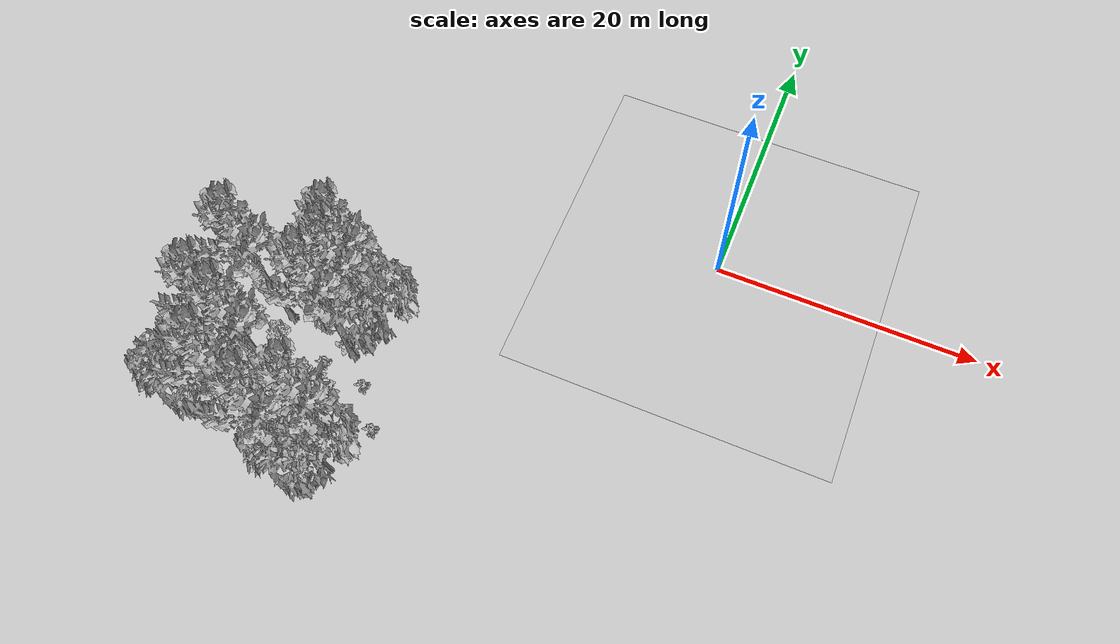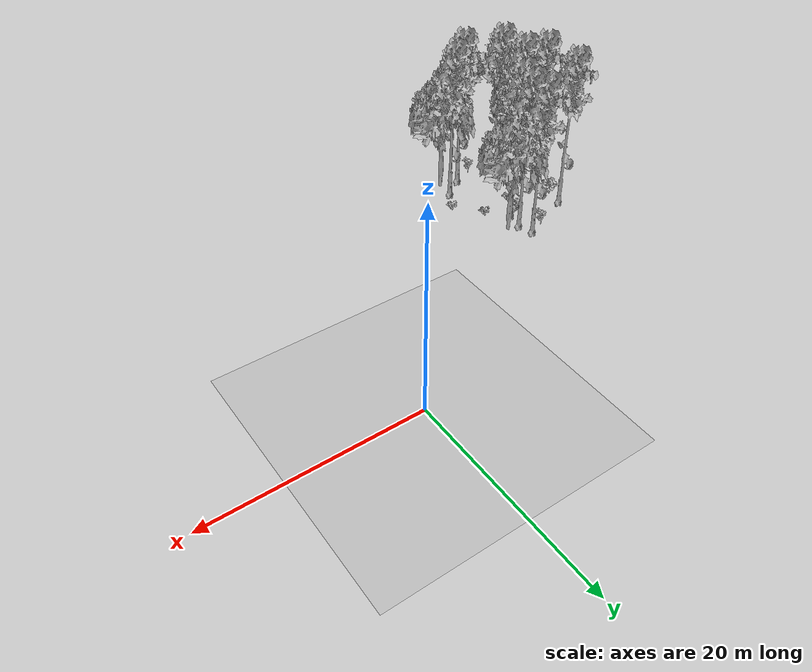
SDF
<sdf version="1.7">
 <world name="default">
  <model name="ground_plane">
   <static>1</static>
   <link name="link">
    <collision name="collision">
     <pose>-50 0 0 0 -0 0</pose>
     <geometry><plane><normal>0 0 1</normal><size>80 80</size></plane></geometry>
     <surface><contact><ode><min_depth>0.01</min_depth><max_vel>0</max_vel></ode></contact></surface>
    </collision>
    <visual name="grass">
     <cast_shadows>0</cast_shadows>
     <geometry>
      <mesh>
       <scale>0.46714285714285714 0.46714285714285714 0.1</scale>
       <uri>file://grass_plane/meshes/grass_plane.dae</uri>
      </mesh>
     </geometry>
    </visual>
   </link>
  </model>
  <model name="Tree 37">
   <static>1</static>
   <pose>-22.56918885558309 -13.229997733210759 0 1.57079 -0 0</pose>
   <link name="link">
    <collision name="collision">
     <geometry><mesh><scale>3.5 5 3.5</scale><uri>model://tree_9/meshes/tree_9.obj</uri></mesh></geometry>
    </collision>
    <visual name="visual">
     <geometry><mesh><scale>3.5 5 3.5</scale><uri>model://tree_9/meshes/tree_9.obj</uri></mesh></geometry>
    </visual>
   </link>
  </model>
  <model name="Tree 66">
   <static>1</static>
   <pose>-28.22959103672816 -15.623549065819489 0 1.57079 -0 0</pose>
   <link name="link">
    <collision name="collision">
     <geometry><mesh><scale>3.5 5 3.5</scale><uri>model://tree_9/meshes/tree_9.obj</uri></mesh></geometry>
    </collision>
    <visual name="visual">
     <geometry><mesh><scale>3.5 5 3.5</scale><uri>model://tree_9/meshes/tree_9.obj</uri></mesh></geometry>
    </visual>
   </link>
  </model>
  <model name="Tree 69">
   <static>1</static>
   <pose>-22.58187179136092 -16.61043060844613 0 1.57079 -0 0</pose>
   <link name="link">
    <collision name="collision">
     <geometry><mesh><scale>3.5 5 3.5</scale><uri>model://tree_9/meshes/tree_9.obj</uri></mesh></geometry>
    </collision>
    <visual name="visual">
     <geometry><mesh><scale>3.5 5 3.5</scale><uri>model://tree_9/meshes/tree_9.obj</uri></mesh></geometry>
    </visual>
   </link>
  </model>
  <model name="Tree 140">
   <static>1</static>
   <pose>-20.819001208258232 -14.80523766509755 0 1.57079 -0 0</pose>
   <link name="link">
    <collision name="collision">
     <geometry><mesh><scale>3.5 5 3.5</scale><uri>model://tree_2/meshes/tree_2.obj</uri></mesh></geometry>
    </collision>
    <visual name="visual">
     <geometry><mesh><scale>3.5 5 3.5</scale><uri>model://tree_2/meshes/tree_2.obj</uri></mesh></geometry>
    </visual>
   </link>
  </model>
  <model name="Tree 194">
   <static>1</static>
   <pose>-29.011436245711018 -23.035918738318102 0 1.57079 -0 0</pose>
   <link name="link">
    <collision name="collision">
     <geometry><mesh><scale>3.5 5 3.5</scale><uri>model://tree_2/meshes/tree_2.obj</uri></mesh></geometry>
    </collision>
    <visual name="visual">
     <geometry><mesh><scale>3.5 5 3.5</scale><uri>model://tree_2/meshes/tree_2.obj</uri></mesh></geometry>
    </visual>
   </link>
  </model>
  <model name="Tree 217">
   <static>1</static>
   <pose>-19.852764068627735 -24.886477989356717 0 1.57079 -0 0</pose>
   <link name="link">
    <collision name="collision">
     <geometry><mesh><scale>3.5 5 3.5</scale><uri>model://tree_2/meshes/tree_2.obj</uri></mesh></geometry>
    </collision>
    <visual name="visual">
     <geometry><mesh><scale>3.5 5 3.5</scale><uri>model://tree_2/meshes/tree_2.obj</uri></mesh></geometry>
    </visual>
   </link>
  </model>
  <model name="Tree 311">
   <static>1</static>
   <pose>-19.778366991958922 -23.222877299637226 0 1.57079 -0 0</pose>
   <link name="link">
    <collision name="collision">
     <geometry><mesh><scale>3.5 5 3.5</scale><uri>model://tree_9/meshes/tree_9.obj</uri></mesh></geometry>
    </collision>
    <visual name="visual">
     <geometry><mesh><scale>3.5 5 3.5</scale><uri>model://tree_9/meshes/tree_9.obj</uri></mesh></geometry>
    </visual>
   </link>
  </model>
  <model name="Tree 324">
   <static>1</static>
   <pose>-22.121172734994545 -14.7774786051314 0 1.57079 -0 0</pose>
   <link name="link">
    <collision name="collision">
     <geometry><mesh><scale>3.5 5 3.5</scale><uri>model://tree_9/meshes/tree_9.obj</uri></mesh></geometry>
    </collision>
    <visual name="visual">
     <geometry><mesh><scale>3.5 5 3.5</scale><uri>model://tree_9/meshes/tree_9.obj</uri></mesh></geometry>
    </visual>
   </link>
  </model>
  <model name="Tree 330">
   <static>1</static>
   <pose>-26.10420029205101 -20.564985670385916 0 1.57079 -0 0</pose>
   <link name="link">
    <collision name="collision">
     <geometry><mesh><scale>3.5 5 3.5</scale><uri>model://tree_9/meshes/tree_9.obj</uri></mesh></geometry>
    </collision>
    <visual name="visual">
     <geometry><mesh><scale>3.5 5 3.5</scale><uri>model://tree_9/meshes/tree_9.obj</uri></mesh></geometry>
    </visual>
   </link>
  </model>
  <model name="Tree 405">
   <static>1</static>
   <pose>-25.69879026475001 -23.42334859299448 0 1.57079 -0 0</pose>
   <link name="link">
    <collision name="collision">
     <geometry><mesh><scale>3.5 5 3.5</scale><uri>model://tree_9/meshes/tree_9.obj</uri></mesh></geometry>
    </collision>
    <visual name="visual">
     <geometry><mesh><scale>3.5 5 3.5</scale><uri>model://tree_9/meshes/tree_9.obj</uri></mesh></geometry>
    </visual>
   </link>
  </model>
  <model name="Tree 511">
   <static>1</static>
   <pose>-21.922821562994475 -24.76817637340887 0 1.57079 -0 0</pose>
   <link name="link">
    <collision name="collision">
     <geometry><mesh><scale>3.5 5 3.5</scale><uri>model://tree_9/meshes/tree_9.obj</uri></mesh></geometry>
    </collision>
    <visual name="visual">
     <geometry><mesh><scale>3.5 5 3.5</scale><uri>model://tree_9/meshes/tree_9.obj</uri></mesh></geometry>
    </visual>
   </link>
  </model>
  <model name="Tree 564">
   <static>1</static>
   <pose>-28.163495206666923 -19.779569167362972 0 1.57079 -0 0</pose>
   <link name="link">
    <collision name="collision">
     <geometry><mesh><scale>3.5 5 3.5</scale><uri>model://tree_9/meshes/tree_9.obj</uri></mesh></geometry>
    </collision>
    <visual name="visual">
     <geometry><mesh><scale>3.5 5 3.5</scale><uri>model://tree_9/meshes/tree_9.obj</uri></mesh></geometry>
    </visual>
   </link>
  </model>
  <model name="Bush 6">
   <static>1</static>
   <pose>-24.306887784665324 -19.244878064709738 0 1.57079 -0 0</pose>
   <link name="link">
    <collision name="collision">
     <geometry><mesh><scale>2 2 2</scale><uri>model://bush_2/meshes/bush_2.obj</uri></mesh></geometry>
     <surface><contact><collide_without_contact>false</collide_without_contact></contact></surface>
    </collision>
    <visual name="visual">
     <geometry><mesh><scale>2 2 2</scale><uri>model://bush_2/meshes/bush_2.obj</uri></mesh></geometry>
    </visual>
   </link>
  </model>
  <model name="Bush 30">
   <static>1</static>
   <pose>-28.206777856427653 -17.44750158870982 0 1.57079 -0 0</pose>
   <link name="link">
    <collision name="collision">
     <geometry><mesh><scale>2 2 2</scale><uri>model://bush_1/meshes/bush_1.obj</uri></mesh></geometry>
     <surface><contact><collide_without_contact>false</collide_without_contact></contact></surface>
    </collision>
    <visual name="visual">
     <geometry><mesh><scale>2 2 2</scale><uri>model://bush_1/meshes/bush_1.obj</uri></mesh></geometry>
    </visual>
   </link>
  </model>
  <model name="Bush 286">
   <static>1</static>
   <pose>-24.202159571342346 -18.005392746231657 0 1.57079 -0 0</pose>
   <link name="link">
    <collision name="collision">
     <geometry><mesh><scale>2 2 2</scale><uri>model://bush_2/meshes/bush_2.obj</uri></mesh></geometry>
     <surface><contact><collide_without_contact>false</collide_without_contact></contact></surface>
    </collision>
    <visual name="visual">
     <geometry><mesh><scale>2 2 2</scale><uri>model://bush_2/meshes/bush_2.obj</uri></mesh></geometry>
    </visual>
   </link>
  </model>
  <model name="Bush 292">
   <static>1</static>
   <pose>-26.28372037166481 -24.97533815437403 0 1.57079 -0 0</pose>
   <link name="link">
    <collision name="collision">
     <geometry><mesh><scale>2 2 2</scale><uri>model://bush_2/meshes/bush_2.obj</uri></mesh></geometry>
     <surface><contact><collide_without_contact>false</collide_without_contact></contact></surface>
    </collision>
    <visual name="visual">
     <geometry><mesh><scale>2 2 2</scale><uri>model://bush_2/meshes/bush_2.obj</uri></mesh></geometry>
    </visual>
   </link>
  </model>
  <model name="Bush 315">
   <static>1</static>
   <pose>-27.85464195422384 -18.213551732784616 0 1.57079 -0 0</pose>
   <link name="link">
    <collision name="collision">
     <geometry><mesh><scale>2 2 2</scale><uri>model://bush_2/meshes/bush_2.obj</uri></mesh></geometry>
     <surface><contact><collide_without_contact>false</collide_without_contact></contact></surface>
    </collision>
    <visual name="visual">
     <geometry><mesh><scale>2 2 2</scale><uri>model://bush_2/meshes/bush_2.obj</uri></mesh></geometry>
    </visual>
   </link>
  </model>
  <model name="Bush 407">
   <static>1</static>
   <pose>-22.929565929189053 -16.524754234295767 0 1.57079 -0 0</pose>
   <link name="link">
    <collision name="collision">
     <geometry><mesh><scale>2 2 2</scale><uri>model://bush_0/meshes/bush_0.obj</uri></mesh></geometry>
     <surface><contact><collide_without_contact>false</collide_without_contact></contact></surface>
    </collision>
    <visual name="visual">
     <geometry><mesh><scale>2 2 2</scale><uri>model://bush_0/meshes/bush_0.obj</uri></mesh></geometry>
    </visual>
   </link>
  </model>
  <model name="Bush 410">
   <static>1</static>
   <pose>-23.885595200364328 -13.48536752849995 0 1.57079 -0 0</pose>
   <link name="link">
    <collision name="collision">
     <geometry><mesh><scale>2 2 2</scale><uri>model://bush_5/meshes/bush_5.obj</uri></mesh></geometry>
     <surface><contact><collide_without_contact>false</collide_without_contact></contact></surface>
    </collision>
    <visual name="visual">
     <geometry><mesh><scale>2 2 2</scale><uri>model://bush_5/meshes/bush_5.obj</uri></mesh></geometry>
    </visual>
   </link>
  </model>
  <model name="Bush 465">
   <static>1</static>
   <pose>-28.873581538819842 -23.754163949570717 0 1.57079 -0 0</pose>
   <link name="link">
    <collision name="collision">
     <geometry><mesh><scale>2 2 2</scale><uri>model://bush_2/meshes/bush_2.obj</uri></mesh></geometry>
     <surface><contact><collide_without_contact>false</collide_without_contact></contact></surface>
    </collision>
    <visual name="visual">
     <geometry><mesh><scale>2 2 2</scale><uri>model://bush_2/meshes/bush_2.obj</uri></mesh></geometry>
    </visual>
   </link>
  </model>
  <model name="Bush 508">
   <static>1</static>
   <pose>-20.72561953934271 -18.571104822802127 0 1.57079 -0 0</pose>
   <link name="link">
    <collision name="collision">
     <geometry><mesh><scale>2 2 2</scale><uri>model://bush_2/meshes/bush_2.obj</uri></mesh></geometry>
     <surface><contact><collide_without_contact>false</collide_without_contact></contact></surface>
    </collision>
    <visual name="visual">
     <geometry><mesh><scale>2 2 2</scale><uri>model://bush_2/meshes/bush_2.obj</uri></mesh></geometry>
    </visual>
   </link>
  </model>
  <model name="Bush 603">
   <static>1</static>
   <pose>-18.608946364875173 -21.26139924931323 0 1.57079 -0 0</pose>
   <link name="link">
    <collision name="collision">
     <geometry><mesh><scale>2 2 2</scale><uri>model://bush_2/meshes/bush_2.obj</uri></mesh></geometry>
     <surface><contact><collide_without_contact>false</collide_without_contact></contact></surface>
    </collision>
    <visual name="visual">
     <geometry><mesh><scale>2 2 2</scale><uri>model://bush_2/meshes/bush_2.obj</uri></mesh></geometry>
    </visual>
   </link>
  </model>
  <model name="Bush 634">
   <static>1</static>
   <pose>-23.670211193999897 -25.14442843258788 0 1.57079 -0 0</pose>
   <link name="link">
    <collision name="collision">
     <geometry><mesh><scale>2 2 2</scale><uri>model://bush_5/meshes/bush_5.obj</uri></mesh></geometry>
     <surface><contact><collide_without_contact>false</collide_without_contact></contact></surface>
    </collision>
    <visual name="visual">
     <geometry><mesh><scale>2 2 2</scale><uri>model://bush_5/meshes/bush_5.obj</uri></mesh></geometry>
    </visual>
   </link>
  </model>
 </world>
</sdf>
